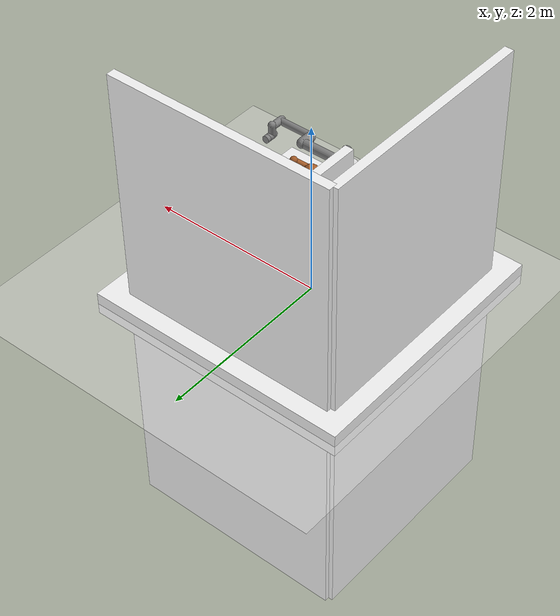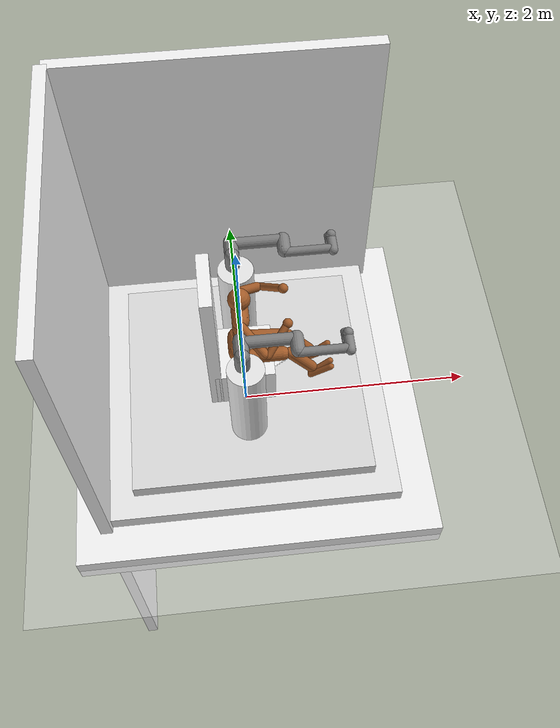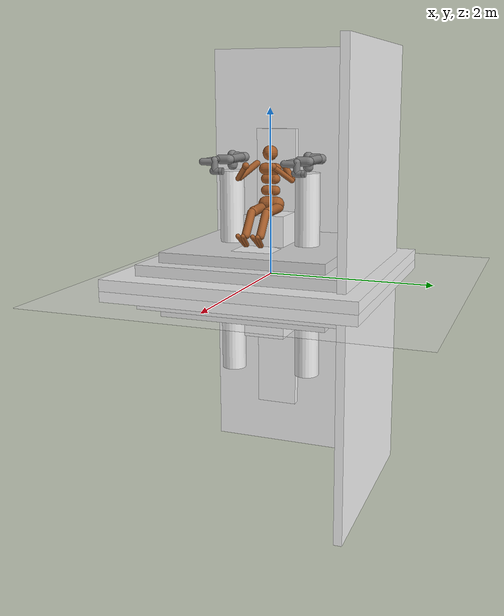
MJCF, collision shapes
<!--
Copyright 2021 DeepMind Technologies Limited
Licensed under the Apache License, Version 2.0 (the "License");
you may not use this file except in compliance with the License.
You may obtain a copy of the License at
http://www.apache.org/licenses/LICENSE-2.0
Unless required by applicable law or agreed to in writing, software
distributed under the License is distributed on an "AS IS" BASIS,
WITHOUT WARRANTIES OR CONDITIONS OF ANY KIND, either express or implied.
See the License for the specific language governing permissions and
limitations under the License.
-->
<mujoco model="Humanoid">
  <compiler angle="radian" meshdir="assets" autolimits="true" inertiafromgeom="auto" inertiagrouprange="0 1" /> <!-- if inertiafromgeom="true", the set mass will not work as it would be inferred  -->

  <option integrator="implicitfast"/>

  <visual>
    <map force="0.1" zfar="30"/>
    <rgba haze="0.15 0.25 0.35 1"/>
    <global offwidth="2560" offheight="1440" elevation="-20" azimuth="120"/>
  </visual>

  <statistic center="0 0 0.7"/>

  <asset>
    <texture type="skybox" builtin="gradient" rgb1=".3 .5 .7" rgb2="0 0 0" width="32" height="512"/>
    <texture name="body" type="cube" builtin="flat" mark="cross" width="128" height="128" rgb1="0.8 0.6 0.4" rgb2="0.8 0.6 0.4" markrgb="1 1 1"/>
    <material name="body" texture="body" texuniform="true" rgba="0.8 0.6 .4 1"/>
    <texture name="grid" type="2d" builtin="checker" width="512" height="512" rgb1=".95 .95 .95" rgb2="1 1 1"/>
    <material name="grid" texture="grid" texrepeat="5 5" texuniform="true" reflectance=".2"/>

	<material name="cuff_mat" rgba="0.7 0.7 0.7 0.5" specular="0.3"/>

	<!-- ur5e -->
	<material class="ur5e" name="black" rgba="0.033 0.033 0.033 1"/>
    <material class="ur5e" name="jointgray" rgba="0.278 0.278 0.278 1"/>
    <material class="ur5e" name="linkgray" rgba="0.82 0.82 0.82 1"/>
    <material class="ur5e" name="urblue" rgba="0.49 0.678 0.8 1"/>

    <mesh file="base_0.obj"/>
    <mesh file="base_1.obj"/>
    <mesh file="shoulder_0.obj"/>
    <mesh file="shoulder_1.obj"/>
    <mesh file="shoulder_2.obj"/>
    <mesh file="upperarm_0.obj"/>
    <mesh file="upperarm_1.obj"/>
    <mesh file="upperarm_2.obj"/>
    <mesh file="upperarm_3.obj"/>
    <mesh file="forearm_0.obj"/>
    <mesh file="forearm_1.obj"/>
    <mesh file="forearm_2.obj"/>
    <mesh file="forearm_3.obj"/>
    <mesh file="wrist1_0.obj"/>
    <mesh file="wrist1_1.obj"/>
    <mesh file="wrist1_2.obj"/>
    <mesh file="wrist2_0.obj"/>
    <mesh file="wrist2_1.obj"/>
    <mesh file="wrist2_2.obj"/>
    <mesh file="wrist3.obj"/>

  </asset>

  <default>
    <motor ctrlrange="-1 1" forcerange="-150 150"/> 	<!-- I changed ctrlrange from "-1 1" to "-1.54 0.754" and  ctrllimited to "false" -->
    <default class="body_of_humanoid">

      <!-- geoms -->
      <geom type="capsule" condim="1" friction=".7" solimp=".9 .99 .003" solref=".015 1" material="body" group="1"/>
      <default class="thigh">
        <geom size=".06"/>
      </default>
      <default class="shin">
        <geom fromto="0 0 0 0 0 -.3"  size=".049"/>
      </default>
      <default class="foot">
        <geom size=".027"/>
        <default class="foot1">
          <geom fromto="-.07 -.01 0 .14 -.03 0"/>
        </default>
        <default class="foot2">
          <geom fromto="-.07 .01 0 .14  .03 0"/>
        </default>
      </default>
      <default class="arm_upper">
        <geom size=".04"/>
      </default>
      <default class="arm_lower">
        <geom size=".031"/>
      </default>
      <default class="hand">
        <geom type="sphere" size=".04"/>
      </default>

      <!-- joints -->
      <joint type="hinge" damping=".2" stiffness="1" armature=".01" limited="true" solimplimit="0 .99 .01"/>
      <default class="joint_big">
        <joint damping="5" stiffness="1000"/> <!-- I changed from the value of 10  -->
        <default class="hip_x">
          <joint range="-0.5233 0.1744"/>
        </default>
        <default class="hip_z">
          <joint range="-1.0466 0.6105"/>
        </default>
        <default class="hip_y">
          <joint axis="0 1 0" range="-2.6166 0.3488"/>
        </default>
        <default class="joint_big_stiff"> <!-- I changed from the value of 20  -->
          <joint stiffness="2000"/>
        </default>
      </default>
      <default class="knee">
        <joint pos="0 0 .02" axis="0 -1 0" range="-2.7911 0.0348"/>
      </default>
      <default class="ankle">
        <joint range="-0.8722 0.8722"/>
        <default class="ankle_y">
          <joint pos="0 0 .08" axis="0 1 0" stiffness="6"/>
        </default>
        <default class="ankle_x">
          <joint pos="0 0 .04" stiffness="3"/>
        </default>
      </default>
      <default class="shoulder1">
        <joint range="-2.617 2.09" stiffness="0"/>
		<general ctrlrange="-2.617 2.09" gaintype="fixed" biastype="affine" gainprm="300" biasprm="0 -250 -50" forcerange="-1 1" />
      </default>
	  <default class="shoulder2">
        <joint range="-1.4827 2.617" stiffness="0"/>
		<general ctrlrange="-1.4827 2.617" gaintype="fixed" biastype="affine" gainprm="300" biasprm="0 -250 -50" forcerange="-1 1" />
      </default>
      <default class="elbow">
        <joint range="-1.4827 2.09" stiffness="0"/>
		<general ctrlrange="-1.4827 2.09" gaintype="fixed" biastype="affine" gainprm="200" biasprm="0 -150 -30" forcerange="-1 1" />
      </default>
    </default>

	<!-- ur5e -->
	<default class="ur5e">
      <material specular="0.5" shininess="0.25"/>
      <joint axis="0 1 0" range="-6.28319 6.28319" armature="0.1"/>
      <general gaintype="fixed" biastype="affine" ctrlrange="-6.2831 6.2831" gainprm="2000" biasprm="0 -2000 -400" forcerange="-150 150"/>
      <default class="size3">
        <default class="size3_limited">
          <joint range="-3.1415 3.1415"/>
          <general ctrlrange="-3.1415 3.1415"/>
        </default>
      </default>
      <default class="size1">
        <general gainprm="500" biasprm="0 -500 -100" forcerange="-28 28"/>
      </default>
      <default class="visual">
        <geom type="mesh" contype="0" conaffinity="0" group="2"/>
      </default>
      <default class="collision">
        <geom type="capsule" group="3"/>
        <default class="eef_collision">
          <geom type="cylinder"/>
        </default>
      </default>
      <site size="0.001" rgba="0.5 0.5 0.5 0.3" group="4"/>
    </default>

  </default>

  <worldbody>
    <geom name="floor" size="0 0 .05" type="plane" material="grid" condim="3"/>
    <light name="spotlight" mode="targetbodycom" target="torso" diffuse=".8 .8 .8" specular="0.3 0.3 0.3" pos="0 -6 4" cutoff="30"/>
    <light name="top" pos="0 0 2" mode="trackcom"/>

    <body name="torso" pos="0 0 1.282" childclass="body_of_humanoid">
      <camera name="back" pos="-3 0 1" xyaxes="0 -1 0 1 0 2" mode="trackcom"/>
      <camera name="side" pos="0 -3 1" xyaxes="1 0 0 0 1 2" mode="trackcom"/>
      <joint type="free" stiffness="1000" damping="1" frictionloss="0" armature="0"/> <!-- Editing Point -->

      <geom name="torso" fromto="0 -.07 0 0 .07 0" size=".07"/>
      <geom name="waist_upper" fromto="-.01 -.06 -.12 -.01 .06 -.12" size=".06"/>
      <body name="head" pos="0 0 .19">
        <geom name="head" type="sphere" size=".09"/>
        <camera name="egocentric" pos=".09 0 0" xyaxes="0 -1 0 .1 0 1" fovy="80"/>
      </body>
      <body name="waist_lower" pos="-.01 0 -.26">
        <geom name="waist_lower" fromto="0 -.06 0 0 .06 0" size=".06"/>
        <joint name="abdomen_z" pos="0 0 .065" axis="0 0 1" range="-0.785 0.785" class="joint_big_stiff"/>
        <joint name="abdomen_y" pos="0 0 .065" axis="0 1 0" range="-1.3083 0.5233" class="joint_big"/>
        <body name="pelvis" pos="0 0 -.165">
          <joint name="abdomen_x" pos="0 0 .1" axis="1 0 0" range="-0.61055 0.61055" class="joint_big"/>
          <geom name="butt" fromto="-.02 -.07 0 -.02 .07 0" size=".09"/>
          <body name="thigh_right" pos="0 -.1 -.04" euler="0 -89.5 0"> <!-- Editing Point -->
            <joint name="hip_x_right" axis="1 0 0" class="hip_x"/>
            <joint name="hip_z_right" axis="0 0 1" class="hip_z"/>
            <joint name="hip_y_right" class="hip_y"/>
            <geom name="thigh_right" fromto="0 0 0 0 .01 -.34" class="thigh"/>
            <body name="shin_right" pos="0 .01 -.4" euler="0 70 0"> <!-- Editing Point -->
              <joint name="knee_right" class="knee"/>
              <geom name="shin_right" class="shin"/>
              <body name="foot_right" pos="0 0 -.39">
                <joint name="ankle_y_right" class="ankle_y"/>
                <joint name="ankle_x_right" class="ankle_x" axis="1 0 .5"/>
                <geom name="foot1_right" class="foot1"/>
                <geom name="foot2_right" class="foot2"/>
              </body>
            </body>
          </body>
          <body name="thigh_left" pos="0 .1 -.04" euler="0 -89.5 0" > <!-- Editing Point -->
            <joint name="hip_x_left" axis="-1 0 0" class="hip_x"/>
            <joint name="hip_z_left" axis="0 0 -1" class="hip_z"/>
            <joint name="hip_y_left" class="hip_y" />
            <geom name="thigh_left" fromto="0 0 0 0 -.01 -.34" class="thigh"/>
            <body name="shin_left" pos="0 -.01 -.4" euler="0 70 0"> <!-- Editing Point -->
              <joint name="knee_left" class="knee"/>
              <geom name="shin_left" fromto="0 0 0 0 0 -.3" class="shin"/>
              <body name="foot_left" pos="0 0 -.39">
                <joint name="ankle_y_left" class="ankle_y"/>
                <joint name="ankle_x_left" class="ankle_x" axis="-1 0 -.5"/>
                <geom name="foot1_left" class="foot1"/>
                <geom name="foot2_left" class="foot2"/>
              </body>
            </body>
          </body>
        </body>
      </body>
      <body name="upper_arm_right" pos="0 -.17 .06" euler="0 0 0">            <!-- Editing Point (x=-90) -->
		<inertial pos="0 0 0" mass="0.017" diaginertia="1.66667e-05 1.66667e-05 1.66667e-05"/> <!-- I added this line to set the mass to the stated value -->

		<site name="shoulder_attach" pos="0 0 0" size="0.01"/>
        <joint name="shoulder1_right" axis="2 1 1"  class="shoulder1"/>
        <joint name="shoulder2_right" axis="0 -1 1" class="shoulder2" />
        <geom name="upper_arm_right" fromto="0 0 0 .16 -.16 -.16" class="arm_upper"/>
        <body name="lower_arm_right" pos=".18 -.18 -.18" euler="0 0 0">        <!-- Editing Point (z=-45) -->
		  <inertial pos="0 0 0" mass="0.009" diaginertia="1.66667e-05 1.66667e-05 1.66667e-05"/> <!-- I added this line to set the mass to the stated value -->

          <joint name="elbow_right" axis="0 -1 1" class="elbow"/>
          <geom name="lower_arm_right" fromto=".01 .01 .01 .17 .17 .17" class="arm_lower"/>

          <body name="hand_right" pos=".18 .18 .18">
		    <inertial pos="0 0 0" mass="0.002" diaginertia="1.66667e-05 1.66667e-05 1.66667e-05"/> <!-- I added this line to set the mass to the stated value -->

            <geom name="hand_right" zaxis="1 1 1" class="hand"/>
			<site name="hand_attach" pos="0 0 0" size="0.01"/>
          </body>
        </body>

      </body>
      <body name="upper_arm_left" pos="0 .17 .06" euler="0 0 0" >
	  <inertial pos="0 0 0" mass="0.017" diaginertia="1.66667e-05 1.66667e-05 1.66667e-05"/> <!-- I added this line to set the mass to the stated value -->

        <joint name="shoulder1_left" axis="-2 1 -1" class="shoulder1"/>
        <joint name="shoulder2_left" axis="0 -1 -1"  class="shoulder2"/>
        <geom name="upper_arm_left" fromto="0 0 0 .16 .16 -.16" class="arm_upper"/>
        <body name="lower_arm_left" pos=".18 .18 -.18">
		<inertial pos="0 0 0" mass="0.009" diaginertia="1.66667e-05 1.66667e-05 1.66667e-05"/> <!-- I added this line to set the mass to the stated value -->

          <joint name="elbow_left" axis="0 -1 -1" class="elbow"/>
          <geom name="lower_arm_left" fromto=".01 -.01 .01 .17 -.17 .17" class="arm_lower"/>
          <body name="hand_left" pos=".18 -.18 .18">
		  <inertial pos="0 0 0" mass="0.002" diaginertia="1.66667e-05 1.66667e-05 1.66667e-05"/> <!-- I added this line to set the mass to the stated value -->

            <geom name="hand_left" zaxis="1 -1 1" class="hand"/>
			<site name="hand_attach2" pos="0 0 0" size="0.01"/>
          </body>
        </body>

      </body>
    </body>

	<!-- Stool/Sit          -->

	<body name="floor">
      <geom type="box" size="1 1 0.38" pos="0 0 0" rgba="0.85 0.85 0.85 1" />
	  <geom type="box" size="1.2 1.2 0.26" pos="0 0 0" rgba="0.9 0.9 0.9 1" />
	  <geom type="box" size="1.5 1.5 0.13" pos="0 0 0" rgba="0.95 0.95 0.95 0.8" />
	  <geom type="box" size="0.05 1.25 2.75" pos="-1.25 0 0" rgba="0.95 0.95 0.95 1" />			<!-- Back Wall          -->
	  <geom type="box" size="1.25 0.05 2.75" pos="0 1.25 0" rgba="0.95 0.95 0.95 1" />				<!-- Left Wall          -->
    </body>

	<body name="Sit">
      <geom type="box" size="0.25 0.25 0.75" pos="0 0 0" rgba="0.95 0.95 0.95 1" />
    </body>

	<body name="leg_rest">
      <geom type="box" size="0.25 0.25 0.38" pos="0.4 0 0" rgba="0.95 0.95 0.95 1" />
    </body>

	<body name="back_rest">
      <geom type="box" size="0.05 0.25 1.75" pos="-0.25 0 0" rgba="0.95 0.95 0.95 1" />
    </body>

	<!-- UR5E   START       -->
	<geom name="ring_floor" type="cylinder" size="0.15 1.25" pos="0 -0.5 0" rgba="0.9 0.9 0.9 1"/>  <!-- size=1.25 is height of robot stand, pos y is distance from humanoid, change pos x -->
		<body name="base" quat="1 0 0 0" childclass="ur5e" pos="-0.02 -0.5 1.25">							<!-- pos z is height of robot stand, pos y is distance from humanoid, change pos x -->
      <inertial mass="4.0" pos="0 0 0" diaginertia="0.00443333156 0.00443333156 0.0072"/>
      <geom mesh="base_0" material="black" class="visual"/>
      <geom mesh="base_1" material="jointgray" class="visual"/>
      <body name="shoulder_link" pos="0 0 0.163">
        <inertial mass="3.7" pos="0 0 0" diaginertia="0.0102675 0.0102675 0.00666"/>
        <joint name="shoulder_pan_joint" class="size3" axis="0 0 1"/>
        <geom mesh="shoulder_0" material="urblue" class="visual"/>
        <geom mesh="shoulder_1" material="black" class="visual"/>
        <geom mesh="shoulder_2" material="jointgray" class="visual"/>
        <geom class="collision" size="0.06 0.06" pos="0 0 -0.04"/>
        <body name="upper_arm_link" pos="0 0.138 0" quat="1 0 1 0">
		  <site name="ur5e_upper_arm_attach" pos="0 0 0.2" size="0.01"/>
          <inertial mass="8.393" pos="0 0 0.2125" diaginertia="0.133886 0.133886 0.0151074"/>
          <joint name="shoulder_lift_joint" class="size3"/>
          <geom mesh="upperarm_0" material="linkgray" class="visual"/>
          <geom mesh="upperarm_1" material="black" class="visual"/>
          <geom mesh="upperarm_2" material="jointgray" class="visual"/>
          <geom mesh="upperarm_3" material="urblue" class="visual"/>
          <geom class="collision" pos="0 -0.04 0" quat="1 1 0 0" size="0.06 0.06"/>
          <geom class="collision" size="0.05 0.2" pos="0 0 0.2"/>
          <body name="forearm_link" pos="0 -0.131 0.425">

            <inertial mass="2.275" pos="0 0 0.196" diaginertia="0.0311796 0.0311796 0.004095"/>
            <joint name="elbow_joint" class="size3_limited"/>
            <geom mesh="forearm_0" material="urblue" class="visual"/>
            <geom mesh="forearm_1" material="linkgray" class="visual"/>
            <geom mesh="forearm_2" material="black" class="visual"/>
            <geom mesh="forearm_3" material="jointgray" class="visual"/>
            <geom class="collision" pos="0 0.08 0" quat="1 1 0 0" size="0.055 0.06"/>
            <geom class="collision" size="0.038 0.19" pos="0 0 0.2"/>

            <body name="wrist_1_link" pos="0 0 0.392" quat="1 0 1 0">
              <inertial mass="1.219" pos="0 0.127 0" diaginertia="0.0025599 0.0025599 0.0021942"/>
              <joint name="wrist_1_joint" class="size1"/>
              <geom mesh="wrist1_0" material="black" class="visual"/>
              <geom mesh="wrist1_1" material="urblue" class="visual"/>
              <geom mesh="wrist1_2" material="jointgray" class="visual"/>
              <geom class="collision" pos="0 0.05 0" quat="1 1 0 0" size="0.04 0.07"/>
              <body name="wrist_2_link" pos="0 0.127 0">
                <inertial mass="1.219" pos="0 0 0.1" diaginertia="0.0025599 0.0025599 0.0021942"/>
                <joint name="wrist_2_joint" axis="0 0 1" class="size1"/>
                <geom mesh="wrist2_0" material="black" class="visual"/>
                <geom mesh="wrist2_1" material="urblue" class="visual"/>
                <geom mesh="wrist2_2" material="jointgray" class="visual"/>
                <geom class="collision" size="0.04 0.06" pos="0 0 0.04"/>
                <geom class="collision" pos="0 0.02 0.1" quat="1 1 0 0" size="0.04 0.04"/>
                <body name="wrist_3_link" pos="0 0 0.1">
                  <inertial mass="0.1889" pos="0 0.0771683 0" quat="1 0 0 1"
                    diaginertia="0.000132134 9.90863e-05 9.90863e-05"/>
                  <joint name="wrist_3_joint" class="size1"/>
                  <geom material="linkgray" mesh="wrist3" class="visual"/>
                  <geom class="eef_collision" pos="0 0.08 0" quat="1 1 0 0" size="0.04 0.02"/>
                  <site name="wrist_attach" pos="0 0.1 0" quat="-1 1 0 0"/>
                </body>
              </body>
            </body>
          </body>
        </body>
      </body>
    </body>
	<!-- UR5E   END       -->

	<!-- UR5E2   START       -->
	<geom name="ring_floor2" type="cylinder" size="0.15 1.25" pos="0 0.47 0" rgba="0.9 0.9 0.9 1"/>  <!-- size=1.25 is height of robot stand, pos y is distance from humanoid, change pos x -->
		<body name="base2" axisangle="1 0 0 0" childclass="ur5e" pos="-0.02 0.47 1.25">							<!-- pos z is height of robot stand, pos y is distance from humanoid, change pos x -->
      <inertial mass="4.0" pos="0 0 0" diaginertia="0.00443333156 0.00443333156 0.0072"/>
      <geom mesh="base_0" material="black" class="visual"/>
      <geom mesh="base_1" material="jointgray" class="visual"/>
      <body name="shoulder_link2" pos="0 0 0.163">
        <inertial mass="3.7" pos="0 0 0" diaginertia="0.0102675 0.0102675 0.00666"/>
        <joint name="shoulder_pan_joint2" class="size3" axis="0 0 1"/>
        <geom mesh="shoulder_0" material="urblue" class="visual"/>
        <geom mesh="shoulder_1" material="black" class="visual"/>
        <geom mesh="shoulder_2" material="jointgray" class="visual"/>
        <geom class="collision" size="0.06 0.06" pos="0 0 -0.04"/>
        <body name="upper_arm_link2" pos="0 0.138 0" quat="1 0 1 0">

          <inertial mass="8.393" pos="0 0 0.2125" diaginertia="0.133886 0.133886 0.0151074"/>
          <joint name="shoulder_lift_joint2" class="size3"/>
          <geom mesh="upperarm_0" material="linkgray" class="visual"/>
          <geom mesh="upperarm_1" material="black" class="visual"/>
          <geom mesh="upperarm_2" material="jointgray" class="visual"/>
          <geom mesh="upperarm_3" material="urblue" class="visual"/>
          <geom class="collision" pos="0 -0.04 0" quat="1 1 0 0" size="0.06 0.06"/>
          <geom class="collision" size="0.05 0.2" pos="0 0 0.2"/>
          <body name="forearm_link2" pos="0 -0.131 0.425">
			<site name="ur5e_fore_arm_attach" pos="0 0 0.15" size="0.01"/>
            <inertial mass="2.275" pos="0 0 0.196" diaginertia="0.0311796 0.0311796 0.004095"/>
            <joint name="elbow_joint2" class="size3_limited"/>
            <geom mesh="forearm_0" material="urblue" class="visual"/>
            <geom mesh="forearm_1" material="linkgray" class="visual"/>
            <geom mesh="forearm_2" material="black" class="visual"/>
            <geom mesh="forearm_3" material="jointgray" class="visual"/>
            <geom class="collision" pos="0 0.08 0" quat="1 1 0 0" size="0.055 0.06"/>
            <geom class="collision" size="0.038 0.19" pos="0 0 0.2"/>

            <body name="wrist_1_link2" pos="0 0 0.392" quat="1 0 1 0">
              <inertial mass="1.219" pos="0 0.127 0" diaginertia="0.0025599 0.0025599 0.0021942"/>
              <joint name="wrist_1_joint2" class="size1"/>
              <geom mesh="wrist1_0" material="black" class="visual"/>
              <geom mesh="wrist1_1" material="urblue" class="visual"/>
              <geom mesh="wrist1_2" material="jointgray" class="visual"/>
              <geom class="collision" pos="0 0.05 0" quat="1 1 0 0" size="0.04 0.07"/>

              <body name="wrist_2_link2" pos="0 0.127 0">
                <inertial mass="1.219" pos="0 0 0.1" diaginertia="0.0025599 0.0025599 0.0021942"/>
                <joint name="wrist_2_joint2" axis="0 0 1" class="size1"/>

                <geom mesh="wrist2_0" material="black" class="visual"/>

                <geom mesh="wrist2_1" material="urblue" class="visual"/>
				<site name="wrist_attach2" pos="0 0.1 0" quat="-1 1 0 0"/>
                <geom mesh="wrist2_2" material="jointgray" class="visual"/>
                <geom class="collision" size="0.04 0.06" pos="0 0 0.04"/>
                <geom class="collision" pos="0 0.02 0.1" quat="1 1 0 0" size="0.04 0.04"/>
                <body name="wrist_3_link2" pos="0 0 0.1">
                  <inertial mass="0.1889" pos="0 0.0771683 0" quat="1 0 0 1"
                    diaginertia="0.000132134 9.90863e-05 9.90863e-05"/>
                  <joint name="wrist_3_joint2" class="size1"/>
                  <geom material="linkgray" mesh="wrist3" class="visual"/>
                  <geom class="eef_collision" pos="0 0.08 0" quat="1 1 0 0" size="0.04 0.02"/>

                </body>
              </body>
            </body>
          </body>
        </body>
      </body>
    </body>
	<!-- UR5E2   END       -->

  </worldbody>

  <equality>
		<connect name="upper_arm_connection_link3" active="true" site1="hand_attach" site2="wrist_attach" />
		<connect name="upper_arm_connection_link2" active="true" site1="hand_attach2" site2="wrist_attach2" />
		<!-- Weld humanoid's right hand to UR5e's wrist_3 -->

		<!-- Add velocity-dependent damping when inserted -->

  </equality>

  <contact>
    <exclude body1="waist_lower" body2="thigh_right"/>
    <exclude body1="waist_lower" body2="thigh_left"/>
  </contact>

  <tendon>
    <fixed name="hamstring_right" limited="true" range="-0.3 2">
      <joint joint="hip_y_right" coef=".5"/>
      <joint joint="knee_right" coef="-.5"/>
    </fixed>
    <fixed name="hamstring_left" limited="true" range="-0.3 2">
      <joint joint="hip_y_left" coef=".5"/>
      <joint joint="knee_left" coef="-.5"/>
    </fixed>

  </tendon>

  <actuator>
    <motor name="abdomen_z"       gear="1"  joint="abdomen_z"/>
    <motor name="abdomen_y"       gear="1"  joint="abdomen_y"/>
    <motor name="abdomen_x"       gear="1"  joint="abdomen_x"/>
    <motor name="hip_x_right"     gear="1"  joint="hip_x_right"/>
    <motor name="hip_z_right"     gear="1"  joint="hip_z_right"/>
    <motor name="hip_y_right"     gear="1" joint="hip_y_right"/>
    <motor name="knee_right"      gear="1"  joint="knee_right"/>
    <motor name="ankle_y_right"   gear="1"  joint="ankle_y_right"/>
    <motor name="ankle_x_right"   gear="1"  joint="ankle_x_right"/>
    <motor name="hip_x_left"      gear="1"  joint="hip_x_left"/>
    <motor name="hip_z_left"      gear="1"  joint="hip_z_left"/>
    <motor name="hip_y_left"      gear="1" joint="hip_y_left"/>
    <motor name="knee_left"       gear="1"  joint="knee_left"/>
    <motor name="ankle_y_left"    gear="1"  joint="ankle_y_left"/>
    <motor name="ankle_x_left"    gear="1"  joint="ankle_x_left"/>
    <general class="shoulder1" 	name="shoulder1_right"   joint="shoulder1_right"/> <!-- edit -->
    <general class="shoulder2" 	name="shoulder2_right"   joint="shoulder2_right"/> <!-- edit -->
    <general class="elbow" 		name="elbow_right"       joint="elbow_right"/> 		<!-- edit -->
    <general class="shoulder1" 	name="shoulder1_left"   joint="shoulder1_left"/> <!-- edit -->
    <general class="shoulder2" 	name="shoulder2_left"   joint="shoulder2_left"/> <!-- edit -->
    <general class="elbow" 		name="elbow_left"       joint="elbow_left"/> 		<!-- edit -->

	<!-- ur5e  actuator  -->
	<general class="size3" name="shoulder_pan" joint="shoulder_pan_joint"/>
    <general class="size3" name="shoulder_lift" joint="shoulder_lift_joint"/>
    <general class="size3_limited" name="elbow_lift" joint="elbow_joint"/>
    <general class="size1" name="wrist_1" joint="wrist_1_joint"/>
    <general class="size1" name="wrist_2" joint="wrist_2_joint"/>
    <general class="size1" name="wrist_3" joint="wrist_3_joint"/>

	<general class="size3" name="shoulder_pan2" joint="shoulder_pan_joint2"/>
    <general class="size3" name="shoulder_lift2" joint="shoulder_lift_joint2"/>
    <general class="size3_limited" name="elbow_lift2" joint="elbow_joint2"/>
    <general class="size1" name="wrist_12" joint="wrist_1_joint2"/>
    <general class="size1" name="wrist_22" joint="wrist_2_joint2"/>
    <general class="size1" name="wrist_32" joint="wrist_3_joint2"/>

  </actuator>

  <keyframe>
    <!--
    The values below are split into rows for readibility:
      torso position
      torso orientation
      spinal
      right leg
      left leg
      arms
    -->
    <key name="squat"
         qpos="0 0 0.596
               0.988015 0 0.154359 0
               0 0.4 0
               -0.25 -0.5 -2.5 -2.65 -0.8 0.56
               -0.25 -0.5 -2.5 -2.65 -0.8 0.56
               0 0 0 0 0 0
			   -1.5708 -1.5708 1.5708 0 0 0
			   -1.5708 -1.5708 1.5708 0 0 0"/>
    <key name="stand_on_left_leg"
         qpos="0 0 1.21948
               0.971588 -0.179973 0.135318 -0.0729076
               -0.0516 -0.202 0.23
               -0.24 -0.007 -0.34 -1.76 -0.466 -0.0415
               -0.08 -0.01 -0.37 -0.685 -0.35 -0.09
               0.109 -0.067 -0.7 -0.05 0.12 0.16
			   -1.5708 -1.5708 1.5708 0 0 0
			   -1.5708 -1.5708 1.5708 0 0 0"/>
    <key name="prone"
         qpos="0.4 0 0.0757706
               0.7325 0 0.680767 0
               0 0.0729 0
               0.0077 0.0019 -0.026 -0.351 -0.27 0
               0.0077 0.0019 -0.026 -0.351 -0.27 0
               0.56 -0.62 -1.752
               0.56 -0.62 -1.752
			   -1.5708 -1.5708 1.5708 0 0 0
			   -1.5708 -1.5708 1.5708 0 0 0"/>
    <key name="supine"
         qpos="-0.4 0 0.08122
               0.722788 0 -0.69107 0
               0 -0.25 0
               0.0182 0.0142 0.3 0.042 -0.44 -0.02
               0.0182 0.0142 0.3 0.042 -0.44 -0.02
               0.186 -0.73 -1.73
               0.186 -0.73 -1.73
			   -1.5708 -1.5708 1.5708 0 0 0
			   -1.5708 -1.5708 1.5708 0 0 0"/>
	<key name="sit"
         qpos="0 0 0.8
               0 0 0 0
               0 0 0
               0 0 -1.8 -1.65 0 0
               0 0 -1.8 -1.65 0 0
               0 0 0 0 0 0
			   -1.5708 -1.5708 1.5708 0 0 0
			   -1.5708 -1.5708 1.5708 0 0 0"/>
  </keyframe>
</mujoco>
